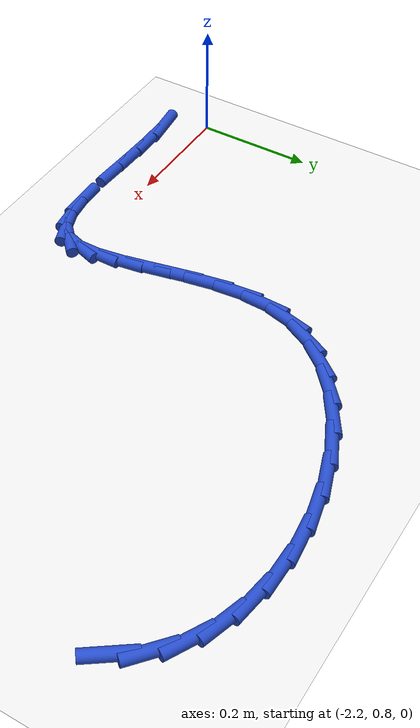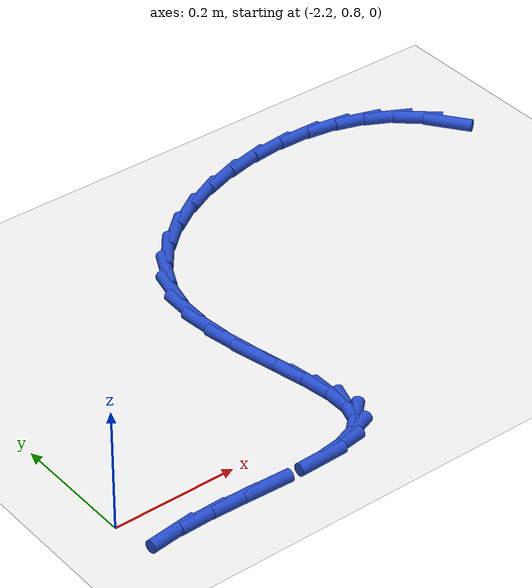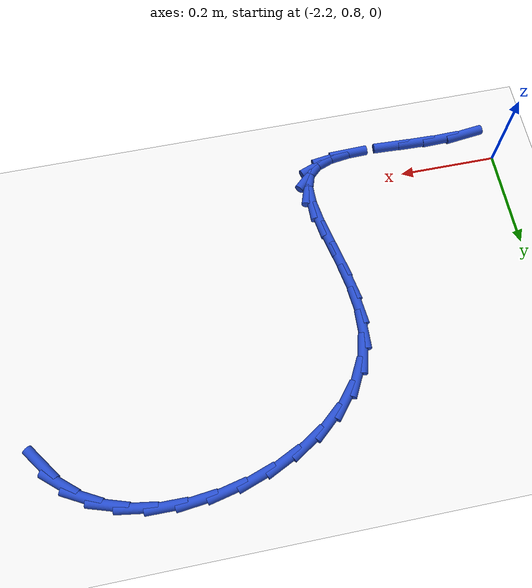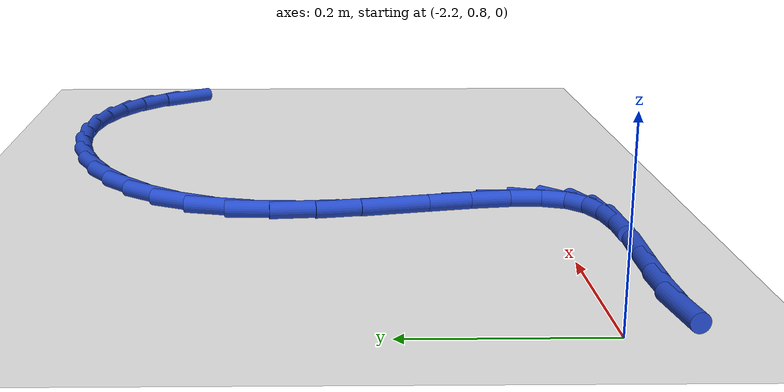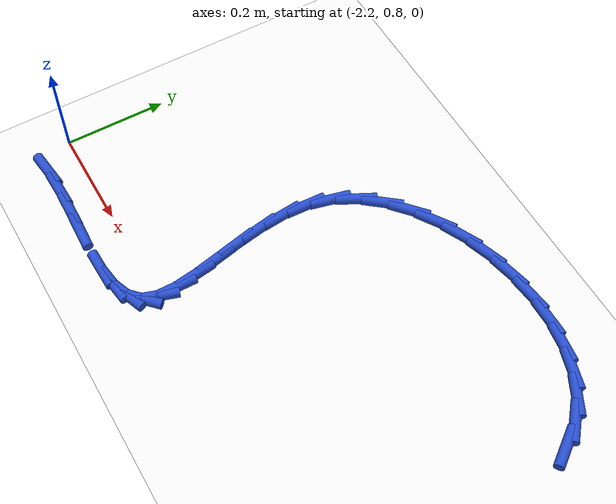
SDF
<sdf version="1.6">
 <world name="default">
  <model name="ground_plane">
   <static>1</static>
   <link name="link">
    <collision name="collision">
     <geometry><plane><normal>0 0 1</normal><size>100 100</size></plane></geometry>
     <surface><friction><ode><mu>100</mu><mu2>50</mu2></ode></friction></surface>
    </collision>
    <visual name="visual">
     <cast_shadows>0</cast_shadows>
     <geometry><plane><normal>0 0 1</normal><size>100 100</size></plane></geometry>
     <material>
      <script><uri>file://media/materials/scripts/gazebo.material</uri><name>Gazebo/WhiteGlow</name></script>
     </material>
    </visual>
   </link>
  </model>
  <model name="line">
   <link name="link_48">
    <pose>-1.203384050635466 1.2624207704187398 0.01 0 1.57 -0.9416268437969945</pose>
    <collision name="collision">
     <geometry><cylinder><radius>0.01</radius><length>0.08</length></cylinder></geometry>
    </collision>
    <visual name="visual">
     <material>
      <script><name>Gazebo/Blue</name><uri>file://media/materials/scripts/gazebo.material</uri></script>
     </material>
     <geometry><cylinder><radius>0.01</radius><length>0.08</length></cylinder></geometry>
    </visual>
   </link>
   <link name="link_49">
    <pose>-1.2326749468602896 1.3026641707522642 0.01 0 1.57 -0.7013962446543137</pose>
    <collision name="collision">
     <geometry><cylinder><radius>0.01</radius><length>0.08</length></cylinder></geometry>
    </collision>
    <visual name="visual">
     <material>
      <script><name>Gazebo/Blue</name><uri>file://media/materials/scripts/gazebo.material</uri></script>
     </material>
     <geometry><cylinder><radius>0.01</radius><length>0.08</length></cylinder></geometry>
    </visual>
   </link>
   <link name="link_50">
    <pose>-1.2700789364898222 1.3342584979919336 0.01 0 1.57 -0.4865525751029142</pose>
    <collision name="collision">
     <geometry><cylinder><radius>0.01</radius><length>0.08</length></cylinder></geometry>
    </collision>
    <visual name="visual">
     <material>
      <script><name>Gazebo/Blue</name><uri>file://media/materials/scripts/gazebo.material</uri></script>
     </material>
     <geometry><cylinder><radius>0.01</radius><length>0.08</length></cylinder></geometry>
    </visual>
   </link>
   <link name="link_51">
    <pose>-1.3141522512428123 1.357571872453758 0.01 0 1.57 -0.3027878740314888</pose>
    <collision name="collision">
     <geometry><cylinder><radius>0.01</radius><length>0.08</length></cylinder></geometry>
    </collision>
    <visual name="visual">
     <material>
      <script><name>Gazebo/Blue</name><uri>file://media/materials/scripts/gazebo.material</uri></script>
     </material>
     <geometry><cylinder><radius>0.01</radius><length>0.08</length></cylinder></geometry>
    </visual>
   </link>
   <link name="link_52">
    <pose>-1.3634510577462793 1.3729725009763747 0.01 0 1.57 -0.14693671564721333</pose>
    <collision name="collision">
     <geometry><cylinder><radius>0.01</radius><length>0.08</length></cylinder></geometry>
    </collision>
    <visual name="visual">
     <material>
      <script><name>Gazebo/Blue</name><uri>file://media/materials/scripts/gazebo.material</uri></script>
     </material>
     <geometry><cylinder><radius>0.01</radius><length>0.08</length></cylinder></geometry>
    </visual>
   </link>
   <link name="link_53">
    <pose>-1.4165315226272397 1.380828590398421 0.01 0 1.57 -0.012265320240938129</pose>
    <collision name="collision">
     <geometry><cylinder><radius>0.01</radius><length>0.08</length></cylinder></geometry>
    </collision>
    <visual name="visual">
     <material>
      <script><name>Gazebo/Blue</name><uri>file://media/materials/scripts/gazebo.material</uri></script>
     </material>
     <geometry><cylinder><radius>0.01</radius><length>0.08</length></cylinder></geometry>
    </visual>
   </link>
   <link name="link_54">
    <pose>-1.471949812512712 1.3815083475585341 0.01 0 1.57 0.10840165977665855</pose>
    <collision name="collision">
     <geometry><cylinder><radius>0.01</radius><length>0.08</length></cylinder></geometry>
    </collision>
    <visual name="visual">
     <material>
      <script><name>Gazebo/Blue</name><uri>file://media/materials/scripts/gazebo.material</uri></script>
     </material>
     <geometry><cylinder><radius>0.01</radius><length>0.08</length></cylinder></geometry>
    </visual>
   </link>
   <link name="link_55">
    <pose>-1.5282620940297142 1.3753799792953505 0.01 0 1.57 0.22168545761386874</pose>
    <collision name="collision">
     <geometry><cylinder><radius>0.01</radius><length>0.08</length></cylinder></geometry>
    </collision>
    <visual name="visual">
     <material>
      <script><name>Gazebo/Blue</name><uri>file://media/materials/scripts/gazebo.material</uri></script>
     </material>
     <geometry><cylinder><radius>0.01</radius><length>0.08</length></cylinder></geometry>
    </visual>
   </link>
   <link name="link_56">
    <pose>-1.584024533805264 1.3628116924475089 0.01 0 1.57 0.3337048359486734</pose>
    <collision name="collision">
     <geometry><cylinder><radius>0.01</radius><length>0.08</length></cylinder></geometry>
    </collision>
    <visual name="visual">
     <material>
      <script><name>Gazebo/Blue</name><uri>file://media/materials/scripts/gazebo.material</uri></script>
     </material>
     <geometry><cylinder><radius>0.01</radius><length>0.08</length></cylinder></geometry>
    </visual>
   </link>
   <link name="link_57">
    <pose>-1.6377932984663797 1.3441716938536459 0.01 0 1.57 0.4504950071396251</pose>
    <collision name="collision">
     <geometry><cylinder><radius>0.01</radius><length>0.08</length></cylinder></geometry>
    </collision>
    <visual name="visual">
     <material>
      <script><name>Gazebo/Blue</name><uri>file://media/materials/scripts/gazebo.material</uri></script>
     </material>
     <geometry><cylinder><radius>0.01</radius><length>0.08</length></cylinder></geometry>
    </visual>
   </link>
   <link name="link_58">
    <pose>-1.688124554640079 1.3198281903523983 0.01 0 1.57 0.578481409554617</pose>
    <collision name="collision">
     <geometry><cylinder><radius>0.01</radius><length>0.08</length></cylinder></geometry>
    </collision>
    <visual name="visual">
     <material>
      <script><name>Gazebo/Blue</name><uri>file://media/materials/scripts/gazebo.material</uri></script>
     </material>
     <geometry><cylinder><radius>0.01</radius><length>0.08</length></cylinder></geometry>
    </visual>
   </link>
   <link name="link_59">
    <pose>-1.7335744689533792 1.2901493887824045 0.01 0 1.57 0.7247594624763687</pose>
    <collision name="collision">
     <geometry><cylinder><radius>0.01</radius><length>0.08</length></cylinder></geometry>
    </collision>
    <visual name="visual">
     <material>
      <script><name>Gazebo/Blue</name><uri>file://media/materials/scripts/gazebo.material</uri></script>
     </material>
     <geometry><cylinder><radius>0.01</radius><length>0.08</length></cylinder></geometry>
    </visual>
   </link>
   <link name="link_60">
    <pose>-1.7726992080332993 1.2555034959823004 0.01 0 1.57 0.8966786034800135</pose>
    <collision name="collision">
     <geometry><cylinder><radius>0.01</radius><length>0.08</length></cylinder></geometry>
    </collision>
    <visual name="visual">
     <material>
      <script><name>Gazebo/Blue</name><uri>file://media/materials/scripts/gazebo.material</uri></script>
     </material>
     <geometry><cylinder><radius>0.01</radius><length>0.08</length></cylinder></geometry>
    </visual>
   </link>
   <link name="link_61">
    <pose>-1.8040549385068563 1.2162587187907243 0.01 0 1.57 1.0997210971847196</pose>
    <collision name="collision">
     <geometry><cylinder><radius>0.01</radius><length>0.08</length></cylinder></geometry>
    </collision>
    <visual name="visual">
     <material>
      <script><name>Gazebo/Blue</name><uri>file://media/materials/scripts/gazebo.material</uri></script>
     </material>
     <geometry><cylinder><radius>0.01</radius><length>0.08</length></cylinder></geometry>
    </visual>
   </link>
   <link name="link_62">
    <pose>-1.8261978270010681 1.1727832640463127 0.01 0 1.57 1.3297905816344204</pose>
    <collision name="collision">
     <geometry><cylinder><radius>0.01</radius><length>0.08</length></cylinder></geometry>
    </collision>
    <visual name="visual">
     <material>
      <script><name>Gazebo/Blue</name><uri>file://media/materials/scripts/gazebo.material</uri></script>
     </material>
     <geometry><cylinder><radius>0.01</radius><length>0.08</length></cylinder></geometry>
    </visual>
   </link>
   <link name="link_63">
    <pose>-1.8378233380245896 1.1254833539014566 0.01 0 1.57 1.5310241195044374</pose>
    <collision name="collision">
     <geometry><cylinder><radius>0.01</radius><length>0.08</length></cylinder></geometry>
    </collision>
    <visual name="visual">
     <material>
      <script><name>Gazebo/Blue</name><uri>file://media/materials/scripts/gazebo.material</uri></script>
     </material>
     <geometry><cylinder><radius>0.01</radius><length>0.08</length></cylinder></geometry>
    </visual>
   </link>
   <link name="link_64">
    <pose>-1.8398177826068882 1.075363107022802 0.01 0 1.57 -1.4737930724380839</pose>
    <collision name="collision">
     <geometry><cylinder><radius>0.01</radius><length>0.08</length></cylinder></geometry>
    </collision>
    <visual name="visual">
     <material>
      <script><name>Gazebo/Blue</name><uri>file://media/materials/scripts/gazebo.material</uri></script>
     </material>
     <geometry><cylinder><radius>0.01</radius><length>0.08</length></cylinder></geometry>
    </visual>
   </link>
   <link name="link_65">
    <pose>-1.8348101949212914 1.0239022427560611 0.01 0 1.57 -1.3908758804056465</pose>
    <collision name="collision">
     <geometry><cylinder><radius>0.01</radius><length>0.08</length></cylinder></geometry>
    </collision>
    <visual name="visual">
     <material>
      <script><name>Gazebo/Blue</name><uri>file://media/materials/scripts/gazebo.material</uri></script>
     </material>
     <geometry><cylinder><radius>0.01</radius><length>0.08</length></cylinder></geometry>
    </visual>
   </link>
   <link name="link_66">
    <pose>-1.8254778085016299 0.9725936343714031 0.01 0 1.57 -1.3532094024841836</pose>
    <collision name="collision">
     <geometry><cylinder><radius>0.01</radius><length>0.08</length></cylinder></geometry>
    </collision>
    <visual name="visual">
     <material>
      <script><name>Gazebo/Blue</name><uri>file://media/materials/scripts/gazebo.material</uri></script>
     </material>
     <geometry><cylinder><radius>0.01</radius><length>0.08</length></cylinder></geometry>
    </visual>
   </link>
   <link name="link_67">
    <pose>-1.8144978568817351 0.9229301551389989 0.01 0 1.57 -1.3601029662635795</pose>
    <collision name="collision">
     <geometry><cylinder><radius>0.01</radius><length>0.08</length></cylinder></geometry>
    </collision>
    <visual name="visual">
     <material>
      <script><name>Gazebo/Blue</name><uri>file://media/materials/scripts/gazebo.material</uri></script>
     </material>
     <geometry><cylinder><radius>0.01</radius><length>0.08</length></cylinder></geometry>
    </visual>
   </link>
   <link name="link_68">
    <pose>-1.8045475735954397 0.8764046783290185 0.01 0 1.57 -1.4228591618236333</pose>
    <collision name="collision">
     <geometry><cylinder><radius>0.01</radius><length>0.08</length></cylinder></geometry>
    </collision>
    <visual name="visual">
     <material>
      <script><name>Gazebo/Blue</name><uri>file://media/materials/scripts/gazebo.material</uri></script>
     </material>
     <geometry><cylinder><radius>0.01</radius><length>0.08</length></cylinder></geometry>
    </visual>
   </link>
   <link name="link_69">
    <pose>-1.7983041921765737 0.8345100772116315 0.01 0 1.57 1.566861467894986</pose>
    <collision name="collision">
     <geometry><cylinder><radius>0.01</radius><length>0.08</length></cylinder></geometry>
    </collision>
    <visual name="visual">
     <material>
      <script><name>Gazebo/Blue</name><uri>file://media/materials/scripts/gazebo.material</uri></script>
     </material>
     <geometry><cylinder><radius>0.01</radius><length>0.08</length></cylinder></geometry>
    </visual>
   </link>
   <link name="link_70">
    <pose>-1.798444946158969 0.7987392250570088 0.01 0 1.57 1.254894873098034</pose>
    <collision name="collision">
     <geometry><cylinder><radius>0.01</radius><length>0.08</length></cylinder></geometry>
    </collision>
    <visual name="visual">
     <material>
      <script><name>Gazebo/Blue</name><uri>file://media/materials/scripts/gazebo.material</uri></script>
     </material>
     <geometry><cylinder><radius>0.01</radius><length>0.08</length></cylinder></geometry>
    </visual>
   </link>
   <link name="link_71">
    <pose>-1.807647069076457 0.7705849951353196 0.01 0 1.57 0.7593934778313208</pose>
    <collision name="collision">
     <geometry><cylinder><radius>0.01</radius><length>0.08</length></cylinder></geometry>
    </collision>
    <visual name="visual">
     <material>
      <script><name>Gazebo/Blue</name><uri>file://media/materials/scripts/gazebo.material</uri></script>
     </material>
     <geometry><cylinder><radius>0.01</radius><length>0.08</length></cylinder></geometry>
    </visual>
   </link>
   <link name="link_72">
    <pose>-1.8280811310880405 0.7511869871321039 0.01 0 1.57 0.3601617604744319</pose>
    <collision name="collision">
     <geometry><cylinder><radius>0.01</radius><length>0.08</length></cylinder></geometry>
    </collision>
    <visual name="visual">
     <material>
      <script><name>Gazebo/Blue</name><uri>file://media/materials/scripts/gazebo.material</uri></script>
     </material>
     <geometry><cylinder><radius>0.01</radius><length>0.08</length></cylinder></geometry>
    </visual>
   </link>
   <link name="link_73">
    <pose>-1.8589002723474222 0.7395808824958544 0.01 0 1.57 0.14059305659665883</pose>
    <collision name="collision">
     <geometry><cylinder><radius>0.01</radius><length>0.08</length></cylinder></geometry>
    </collision>
    <visual name="visual">
     <material>
      <script><name>Gazebo/Blue</name><uri>file://media/materials/scripts/gazebo.material</uri></script>
     </material>
     <geometry><cylinder><radius>0.01</radius><length>0.08</length></cylinder></geometry>
    </visual>
   </link>
   <link name="link_74">
    <pose>-1.8981451536185112 0.7340266808291177 0.01 0 1.57 0.027198144992063102</pose>
    <collision name="collision">
     <geometry><cylinder><radius>0.01</radius><length>0.08</length></cylinder></geometry>
    </collision>
    <visual name="visual">
     <material>
      <script><name>Gazebo/Blue</name><uri>file://media/materials/scripts/gazebo.material</uri></script>
     </material>
     <geometry><cylinder><radius>0.01</radius><length>0.08</length></cylinder></geometry>
    </visual>
   </link>
   <link name="link_76">
    <pose>-1.9940677691399826 0.7341090969789187 0.01 0 1.57 -0.04081043648398868</pose>
    <collision name="collision">
     <geometry><cylinder><radius>0.01</radius><length>0.08</length></cylinder></geometry>
    </collision>
    <visual name="visual">
     <material>
      <script><name>Gazebo/Blue</name><uri>file://media/materials/scripts/gazebo.material</uri></script>
     </material>
     <geometry><cylinder><radius>0.01</radius><length>0.08</length></cylinder></geometry>
    </visual>
   </link>
   <link name="link_77">
    <pose>-2.046823319862451 0.7362632700828234 0.01 0 1.57 -0.02326648390892616</pose>
    <collision name="collision">
     <geometry><cylinder><radius>0.01</radius><length>0.08</length></cylinder></geometry>
    </collision>
    <visual name="visual">
     <material>
      <script><name>Gazebo/Blue</name><uri>file://media/materials/scripts/gazebo.material</uri></script>
     </material>
     <geometry><cylinder><radius>0.01</radius><length>0.08</length></cylinder></geometry>
    </visual>
   </link>
   <link name="link_78">
    <pose>-2.100160243540797 0.7375044567309758 0.01 0 1.57 0.02718918304557843</pose>
    <collision name="collision">
     <geometry><cylinder><radius>0.01</radius><length>0.08</length></cylinder></geometry>
    </collision>
    <visual name="visual">
     <material>
      <script><name>Gazebo/Blue</name><uri>file://media/materials/scripts/gazebo.material</uri></script>
     </material>
     <geometry><cylinder><radius>0.01</radius><length>0.08</length></cylinder></geometry>
    </visual>
   </link>
   <link name="link_79">
    <pose>-2.152117448411065 0.7360914345670597 0.01 0 1.57 0.11891154176355587</pose>
    <collision name="collision">
     <geometry><cylinder><radius>0.01</radius><length>0.08</length></cylinder></geometry>
    </collision>
    <visual name="visual">
     <material>
      <script><name>Gazebo/Blue</name><uri>file://media/materials/scripts/gazebo.material</uri></script>
     </material>
     <geometry><cylinder><radius>0.01</radius><length>0.08</length></cylinder></geometry>
    </visual>
   </link>
  </model>
 </world>
</sdf>
